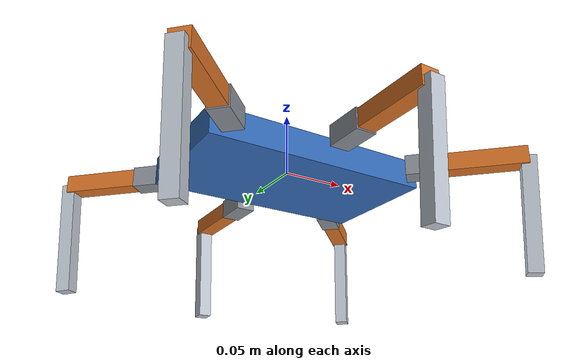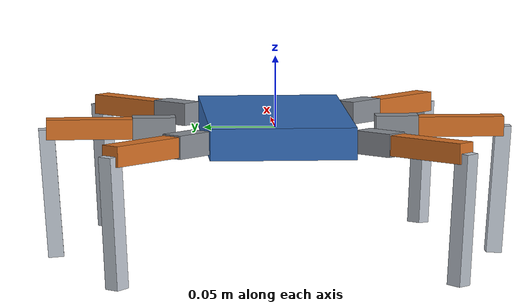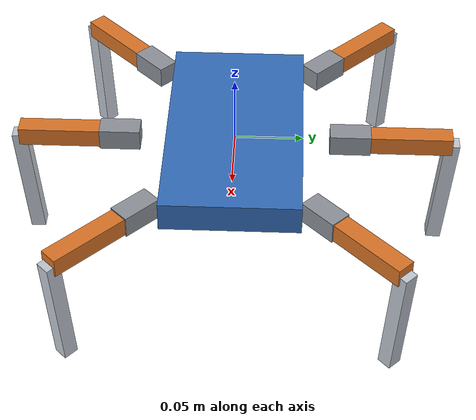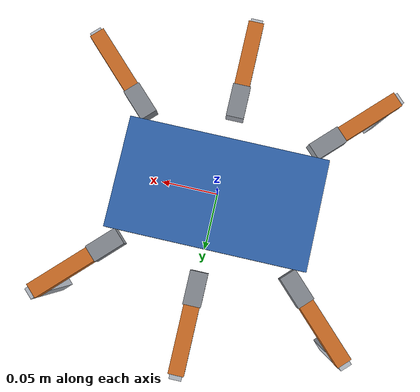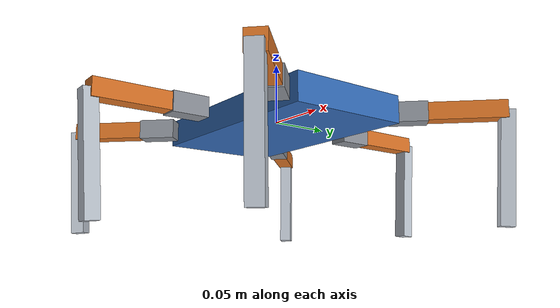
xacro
<?xml version="1.0"?>
<robot xmlns:xacro="http://www.ros.org/wiki/xacro" name="hexapod">
  <xacro:include filename="$(find hexapod_description)/urdf/hexapod_body.urdf.xacro"/>
  <xacro:include filename="$(find hexapod_description)/urdf/hexapod_control.xacro"/>
</robot>

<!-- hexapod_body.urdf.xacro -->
<robot xmlns:xacro="http://www.ros.org/wiki/xacro" name="hexapod_body">
  <material name="body"><color rgba="0.20 0.42 0.72 1"/></material>
  <material name="coxa"><color rgba="0.55 0.57 0.60 1"/></material>
  <material name="femur"><color rgba="0.85 0.45 0.15 1"/></material>
  <material name="tibia"><color rgba="0.75 0.78 0.82 1"/></material>
  <link name="base_link">
    <collision><geometry><box size="0.18000 0.10000 0.02200"/></geometry></collision>
    <visual><geometry><box size="0.18000 0.10000 0.02200"/></geometry><material name="body"/></visual>
    <inertial>
      <origin xyz="0.00000 0.00000 0.00000"/>
      <mass value="0.45"/>
      <inertia ixx="3.932e-04" iyy="1.233e-03" izz="1.590e-03" ixy="0" ixz="0" iyz="0"/>
    </inertial>
  </link>

  <!-- leg FL -->
  <joint name="FL_coxa" type="revolute">
    <parent link="base_link"/>
    <child link="FL_coxa_link"/>
    <origin xyz="0.07500 0.05500 0.00000" rpy="0.00000 0.00000 0.78540"/>
    <axis xyz="0 0 1"/>
    <limit lower="-1.3963" upper="1.3963" effort="0.9" velocity="6.0"/>
    <dynamics damping="0.01"/>
  </joint>
  <link name="FL_coxa_link">
    <collision>
      <origin xyz="0.01500 0.00000 0.00000"/>
      <geometry><box size="0.03000 0.01600 0.01600"/></geometry>
    </collision>
    <visual>
      <origin xyz="0.01500 0.00000 0.00000"/>
      <geometry><box size="0.03000 0.01600 0.01600"/></geometry>
      <material name="coxa"/>
    </visual>
    <inertial>
      <origin xyz="0.01500 0.00000 0.00000"/>
      <mass value="0.06"/>
      <inertia ixx="5.026e-04" iyy="5.058e-04" izz="5.058e-04" ixy="0" ixz="0" iyz="0"/>
    </inertial>
  </link>
  <joint name="FL_femur" type="revolute">
    <parent link="FL_coxa_link"/>
    <child link="FL_femur_link"/>
    <origin xyz="0.03000 0.00000 0.00000" rpy="0.00000 0.00000 0.00000"/>
    <axis xyz="0 -1 0"/>
    <limit lower="-1.0123" upper="1.7802" effort="0.9" velocity="6.0"/>
    <dynamics damping="0.01"/>
  </joint>
  <link name="FL_femur_link">
    <collision>
      <origin xyz="0.03000 0.00000 0.00000"/>
      <geometry><box size="0.06000 0.01400 0.01400"/></geometry>
    </collision>
    <visual>
      <origin xyz="0.03000 0.00000 0.00000"/>
      <geometry><box size="0.06000 0.01400 0.01400"/></geometry>
      <material name="femur"/>
    </visual>
    <inertial>
      <origin xyz="0.03000 0.00000 0.00000"/>
      <mass value="0.065"/>
      <inertia ixx="5.021e-04" iyy="5.206e-04" izz="5.206e-04" ixy="0" ixz="0" iyz="0"/>
    </inertial>
  </link>
  <joint name="FL_tibia" type="revolute">
    <parent link="FL_femur_link"/>
    <child link="FL_tibia_link"/>
    <origin xyz="0.06000 0.00000 0.00000" rpy="0.00000 0.00000 0.00000"/>
    <axis xyz="0 -1 0"/>
    <limit lower="-3.0369" upper="-0.2443" effort="0.9" velocity="6.0"/>
    <dynamics damping="0.01"/>
  </joint>
  <link name="FL_tibia_link">
    <collision>
      <origin xyz="0.09000 0 0"/>
      <geometry><sphere radius="0.008"/></geometry>
    </collision>
    <collision>
      <origin xyz="0.04500 0.00000 0.00000" rpy="0 1.570796 0"/>
      <geometry><cylinder radius="0.0055" length="0.0740"/></geometry>
    </collision>
    <visual>
      <origin xyz="0.04500 0.00000 0.00000"/>
      <geometry><box size="0.09000 0.01100 0.01100"/></geometry>
      <material name="tibia"/>
    </visual>
    <inertial>
      <origin xyz="0.04500 0.00000 0.00000"/>
      <mass value="0.02"/>
      <inertia ixx="5.004e-04" iyy="5.137e-04" izz="5.137e-04" ixy="0" ixz="0" iyz="0"/>
    </inertial>
  </link>

  <!-- leg ML -->
  <joint name="ML_coxa" type="revolute">
    <parent link="base_link"/>
    <child link="ML_coxa_link"/>
    <origin xyz="0.00000 0.07000 0.00000" rpy="0.00000 0.00000 1.57080"/>
    <axis xyz="0 0 1"/>
    <limit lower="-1.3963" upper="1.3963" effort="0.9" velocity="6.0"/>
    <dynamics damping="0.01"/>
  </joint>
  <link name="ML_coxa_link">
    <collision>
      <origin xyz="0.01500 0.00000 0.00000"/>
      <geometry><box size="0.03000 0.01600 0.01600"/></geometry>
    </collision>
    <visual>
      <origin xyz="0.01500 0.00000 0.00000"/>
      <geometry><box size="0.03000 0.01600 0.01600"/></geometry>
      <material name="coxa"/>
    </visual>
    <inertial>
      <origin xyz="0.01500 0.00000 0.00000"/>
      <mass value="0.06"/>
      <inertia ixx="5.026e-04" iyy="5.058e-04" izz="5.058e-04" ixy="0" ixz="0" iyz="0"/>
    </inertial>
  </link>
  <joint name="ML_femur" type="revolute">
    <parent link="ML_coxa_link"/>
    <child link="ML_femur_link"/>
    <origin xyz="0.03000 0.00000 0.00000" rpy="0.00000 0.00000 0.00000"/>
    <axis xyz="0 -1 0"/>
    <limit lower="-1.0123" upper="1.7802" effort="0.9" velocity="6.0"/>
    <dynamics damping="0.01"/>
  </joint>
  <link name="ML_femur_link">
    <collision>
      <origin xyz="0.03000 0.00000 0.00000"/>
      <geometry><box size="0.06000 0.01400 0.01400"/></geometry>
    </collision>
    <visual>
      <origin xyz="0.03000 0.00000 0.00000"/>
      <geometry><box size="0.06000 0.01400 0.01400"/></geometry>
      <material name="femur"/>
    </visual>
    <inertial>
      <origin xyz="0.03000 0.00000 0.00000"/>
      <mass value="0.065"/>
      <inertia ixx="5.021e-04" iyy="5.206e-04" izz="5.206e-04" ixy="0" ixz="0" iyz="0"/>
    </inertial>
  </link>
  <joint name="ML_tibia" type="revolute">
    <parent link="ML_femur_link"/>
    <child link="ML_tibia_link"/>
    <origin xyz="0.06000 0.00000 0.00000" rpy="0.00000 0.00000 0.00000"/>
    <axis xyz="0 -1 0"/>
    <limit lower="-3.0369" upper="-0.2443" effort="0.9" velocity="6.0"/>
    <dynamics damping="0.01"/>
  </joint>
  <link name="ML_tibia_link">
    <collision>
      <origin xyz="0.09000 0 0"/>
      <geometry><sphere radius="0.008"/></geometry>
    </collision>
    <collision>
      <origin xyz="0.04500 0.00000 0.00000" rpy="0 1.570796 0"/>
      <geometry><cylinder radius="0.0055" length="0.0740"/></geometry>
    </collision>
    <visual>
      <origin xyz="0.04500 0.00000 0.00000"/>
      <geometry><box size="0.09000 0.01100 0.01100"/></geometry>
      <material name="tibia"/>
    </visual>
    <inertial>
      <origin xyz="0.04500 0.00000 0.00000"/>
      <mass value="0.02"/>
      <inertia ixx="5.004e-04" iyy="5.137e-04" izz="5.137e-04" ixy="0" ixz="0" iyz="0"/>
    </inertial>
  </link>

  <!-- leg RL -->
  <joint name="RL_coxa" type="revolute">
    <parent link="base_link"/>
    <child link="RL_coxa_link"/>
    <origin xyz="-0.07500 0.05500 0.00000" rpy="0.00000 0.00000 2.35619"/>
    <axis xyz="0 0 1"/>
    <limit lower="-1.3963" upper="1.3963" effort="0.9" velocity="6.0"/>
    <dynamics damping="0.01"/>
  </joint>
  <link name="RL_coxa_link">
    <collision>
      <origin xyz="0.01500 0.00000 0.00000"/>
      <geometry><box size="0.03000 0.01600 0.01600"/></geometry>
    </collision>
    <visual>
      <origin xyz="0.01500 0.00000 0.00000"/>
      <geometry><box size="0.03000 0.01600 0.01600"/></geometry>
      <material name="coxa"/>
    </visual>
    <inertial>
      <origin xyz="0.01500 0.00000 0.00000"/>
      <mass value="0.06"/>
      <inertia ixx="5.026e-04" iyy="5.058e-04" izz="5.058e-04" ixy="0" ixz="0" iyz="0"/>
    </inertial>
  </link>
  <joint name="RL_femur" type="revolute">
    <parent link="RL_coxa_link"/>
    <child link="RL_femur_link"/>
    <origin xyz="0.03000 0.00000 0.00000" rpy="0.00000 0.00000 0.00000"/>
    <axis xyz="0 -1 0"/>
    <limit lower="-1.0123" upper="1.7802" effort="0.9" velocity="6.0"/>
    <dynamics damping="0.01"/>
  </joint>
  <link name="RL_femur_link">
    <collision>
      <origin xyz="0.03000 0.00000 0.00000"/>
      <geometry><box size="0.06000 0.01400 0.01400"/></geometry>
    </collision>
    <visual>
      <origin xyz="0.03000 0.00000 0.00000"/>
      <geometry><box size="0.06000 0.01400 0.01400"/></geometry>
      <material name="femur"/>
    </visual>
    <inertial>
      <origin xyz="0.03000 0.00000 0.00000"/>
      <mass value="0.065"/>
      <inertia ixx="5.021e-04" iyy="5.206e-04" izz="5.206e-04" ixy="0" ixz="0" iyz="0"/>
    </inertial>
  </link>
  <joint name="RL_tibia" type="revolute">
    <parent link="RL_femur_link"/>
    <child link="RL_tibia_link"/>
    <origin xyz="0.06000 0.00000 0.00000" rpy="0.00000 0.00000 0.00000"/>
    <axis xyz="0 -1 0"/>
    <limit lower="-3.0369" upper="-0.2443" effort="0.9" velocity="6.0"/>
    <dynamics damping="0.01"/>
  </joint>
  <link name="RL_tibia_link">
    <collision>
      <origin xyz="0.09000 0 0"/>
      <geometry><sphere radius="0.008"/></geometry>
    </collision>
    <collision>
      <origin xyz="0.04500 0.00000 0.00000" rpy="0 1.570796 0"/>
      <geometry><cylinder radius="0.0055" length="0.0740"/></geometry>
    </collision>
    <visual>
      <origin xyz="0.04500 0.00000 0.00000"/>
      <geometry><box size="0.09000 0.01100 0.01100"/></geometry>
      <material name="tibia"/>
    </visual>
    <inertial>
      <origin xyz="0.04500 0.00000 0.00000"/>
      <mass value="0.02"/>
      <inertia ixx="5.004e-04" iyy="5.137e-04" izz="5.137e-04" ixy="0" ixz="0" iyz="0"/>
    </inertial>
  </link>

  <!-- leg FR -->
  <joint name="FR_coxa" type="revolute">
    <parent link="base_link"/>
    <child link="FR_coxa_link"/>
    <origin xyz="0.07500 -0.05500 0.00000" rpy="0.00000 0.00000 -0.78540"/>
    <axis xyz="0 0 1"/>
    <limit lower="-1.3963" upper="1.3963" effort="0.9" velocity="6.0"/>
    <dynamics damping="0.01"/>
  </joint>
  <link name="FR_coxa_link">
    <collision>
      <origin xyz="0.01500 0.00000 0.00000"/>
      <geometry><box size="0.03000 0.01600 0.01600"/></geometry>
    </collision>
    <visual>
      <origin xyz="0.01500 0.00000 0.00000"/>
      <geometry><box size="0.03000 0.01600 0.01600"/></geometry>
      <material name="coxa"/>
    </visual>
    <inertial>
      <origin xyz="0.01500 0.00000 0.00000"/>
      <mass value="0.06"/>
      <inertia ixx="5.026e-04" iyy="5.058e-04" izz="5.058e-04" ixy="0" ixz="0" iyz="0"/>
    </inertial>
  </link>
  <joint name="FR_femur" type="revolute">
    <parent link="FR_coxa_link"/>
    <child link="FR_femur_link"/>
    <origin xyz="0.03000 0.00000 0.00000" rpy="0.00000 0.00000 0.00000"/>
    <axis xyz="0 -1 0"/>
    <limit lower="-1.0123" upper="1.7802" effort="0.9" velocity="6.0"/>
    <dynamics damping="0.01"/>
  </joint>
  <link name="FR_femur_link">
    <collision>
      <origin xyz="0.03000 0.00000 0.00000"/>
      <geometry><box size="0.06000 0.01400 0.01400"/></geometry>
    </collision>
    <visual>
      <origin xyz="0.03000 0.00000 0.00000"/>
      <geometry><box size="0.06000 0.01400 0.01400"/></geometry>
      <material name="femur"/>
    </visual>
    <inertial>
      <origin xyz="0.03000 0.00000 0.00000"/>
      <mass value="0.065"/>
      <inertia ixx="5.021e-04" iyy="5.206e-04" izz="5.206e-04" ixy="0" ixz="0" iyz="0"/>
    </inertial>
  </link>
  <joint name="FR_tibia" type="revolute">
    <parent link="FR_femur_link"/>
    <child link="FR_tibia_link"/>
    <origin xyz="0.06000 0.00000 0.00000" rpy="0.00000 0.00000 0.00000"/>
    <axis xyz="0 -1 0"/>
    <limit lower="-3.0369" upper="-0.2443" effort="0.9" velocity="6.0"/>
    <dynamics damping="0.01"/>
  </joint>
  <link name="FR_tibia_link">
    <collision>
      <origin xyz="0.09000 0 0"/>
      <geometry><sphere radius="0.008"/></geometry>
    </collision>
    <collision>
      <origin xyz="0.04500 0.00000 0.00000" rpy="0 1.570796 0"/>
      <geometry><cylinder radius="0.0055" length="0.0740"/></geometry>
    </collision>
    <visual>
      <origin xyz="0.04500 0.00000 0.00000"/>
      <geometry><box size="0.09000 0.01100 0.01100"/></geometry>
      <material name="tibia"/>
    </visual>
    <inertial>
      <origin xyz="0.04500 0.00000 0.00000"/>
      <mass value="0.02"/>
      <inertia ixx="5.004e-04" iyy="5.137e-04" izz="5.137e-04" ixy="0" ixz="0" iyz="0"/>
    </inertial>
  </link>

  <!-- leg MR -->
  <joint name="MR_coxa" type="revolute">
    <parent link="base_link"/>
    <child link="MR_coxa_link"/>
    <origin xyz="0.00000 -0.07000 0.00000" rpy="0.00000 0.00000 -1.57080"/>
    <axis xyz="0 0 1"/>
    <limit lower="-1.3963" upper="1.3963" effort="0.9" velocity="6.0"/>
    <dynamics damping="0.01"/>
  </joint>
  <link name="MR_coxa_link">
    <collision>
      <origin xyz="0.01500 0.00000 0.00000"/>
      <geometry><box size="0.03000 0.01600 0.01600"/></geometry>
    </collision>
    <visual>
      <origin xyz="0.01500 0.00000 0.00000"/>
      <geometry><box size="0.03000 0.01600 0.01600"/></geometry>
      <material name="coxa"/>
    </visual>
    <inertial>
      <origin xyz="0.01500 0.00000 0.00000"/>
      <mass value="0.06"/>
      <inertia ixx="5.026e-04" iyy="5.058e-04" izz="5.058e-04" ixy="0" ixz="0" iyz="0"/>
    </inertial>
  </link>
  <joint name="MR_femur" type="revolute">
    <parent link="MR_coxa_link"/>
    <child link="MR_femur_link"/>
    <origin xyz="0.03000 0.00000 0.00000" rpy="0.00000 0.00000 0.00000"/>
    <axis xyz="0 -1 0"/>
    <limit lower="-1.0123" upper="1.7802" effort="0.9" velocity="6.0"/>
    <dynamics damping="0.01"/>
  </joint>
  <link name="MR_femur_link">
    <collision>
      <origin xyz="0.03000 0.00000 0.00000"/>
      <geometry><box size="0.06000 0.01400 0.01400"/></geometry>
    </collision>
    <visual>
      <origin xyz="0.03000 0.00000 0.00000"/>
      <geometry><box size="0.06000 0.01400 0.01400"/></geometry>
      <material name="femur"/>
    </visual>
    <inertial>
      <origin xyz="0.03000 0.00000 0.00000"/>
      <mass value="0.065"/>
      <inertia ixx="5.021e-04" iyy="5.206e-04" izz="5.206e-04" ixy="0" ixz="0" iyz="0"/>
    </inertial>
  </link>
  <joint name="MR_tibia" type="revolute">
    <parent link="MR_femur_link"/>
    <child link="MR_tibia_link"/>
    <origin xyz="0.06000 0.00000 0.00000" rpy="0.00000 0.00000 0.00000"/>
    <axis xyz="0 -1 0"/>
    <limit lower="-3.0369" upper="-0.2443" effort="0.9" velocity="6.0"/>
    <dynamics damping="0.01"/>
  </joint>
  <link name="MR_tibia_link">
    <collision>
      <origin xyz="0.09000 0 0"/>
      <geometry><sphere radius="0.008"/></geometry>
    </collision>
    <collision>
      <origin xyz="0.04500 0.00000 0.00000" rpy="0 1.570796 0"/>
      <geometry><cylinder radius="0.0055" length="0.0740"/></geometry>
    </collision>
    <visual>
      <origin xyz="0.04500 0.00000 0.00000"/>
      <geometry><box size="0.09000 0.01100 0.01100"/></geometry>
      <material name="tibia"/>
    </visual>
    <inertial>
      <origin xyz="0.04500 0.00000 0.00000"/>
      <mass value="0.02"/>
      <inertia ixx="5.004e-04" iyy="5.137e-04" izz="5.137e-04" ixy="0" ixz="0" iyz="0"/>
    </inertial>
  </link>

  <!-- leg RR -->
  <joint name="RR_coxa" type="revolute">
    <parent link="base_link"/>
    <child link="RR_coxa_link"/>
    <origin xyz="-0.07500 -0.05500 0.00000" rpy="0.00000 0.00000 -2.35619"/>
    <axis xyz="0 0 1"/>
    <limit lower="-1.3963" upper="1.3963" effort="0.9" velocity="6.0"/>
    <dynamics damping="0.01"/>
  </joint>
  <link name="RR_coxa_link">
    <collision>
      <origin xyz="0.01500 0.00000 0.00000"/>
      <geometry><box size="0.03000 0.01600 0.01600"/></geometry>
    </collision>
    <visual>
      <origin xyz="0.01500 0.00000 0.00000"/>
      <geometry><box size="0.03000 0.01600 0.01600"/></geometry>
      <material name="coxa"/>
    </visual>
    <inertial>
      <origin xyz="0.01500 0.00000 0.00000"/>
      <mass value="0.06"/>
      <inertia ixx="5.026e-04" iyy="5.058e-04" izz="5.058e-04" ixy="0" ixz="0" iyz="0"/>
    </inertial>
  </link>
  <joint name="RR_femur" type="revolute">
    <parent link="RR_coxa_link"/>
    <child link="RR_femur_link"/>
    <origin xyz="0.03000 0.00000 0.00000" rpy="0.00000 0.00000 0.00000"/>
    <axis xyz="0 -1 0"/>
    <limit lower="-1.0123" upper="1.7802" effort="0.9" velocity="6.0"/>
    <dynamics damping="0.01"/>
  </joint>
  <link name="RR_femur_link">
    <collision>
      <origin xyz="0.03000 0.00000 0.00000"/>
      <geometry><box size="0.06000 0.01400 0.01400"/></geometry>
    </collision>
    <visual>
      <origin xyz="0.03000 0.00000 0.00000"/>
      <geometry><box size="0.06000 0.01400 0.01400"/></geometry>
      <material name="femur"/>
    </visual>
    <inertial>
      <origin xyz="0.03000 0.00000 0.00000"/>
      <mass value="0.065"/>
      <inertia ixx="5.021e-04" iyy="5.206e-04" izz="5.206e-04" ixy="0" ixz="0" iyz="0"/>
    </inertial>
  </link>
  <joint name="RR_tibia" type="revolute">
    <parent link="RR_femur_link"/>
    <child link="RR_tibia_link"/>
    <origin xyz="0.06000 0.00000 0.00000" rpy="0.00000 0.00000 0.00000"/>
    <axis xyz="0 -1 0"/>
    <limit lower="-3.0369" upper="-0.2443" effort="0.9" velocity="6.0"/>
    <dynamics damping="0.01"/>
  </joint>
  <link name="RR_tibia_link">
    <collision>
      <origin xyz="0.09000 0 0"/>
      <geometry><sphere radius="0.008"/></geometry>
    </collision>
    <collision>
      <origin xyz="0.04500 0.00000 0.00000" rpy="0 1.570796 0"/>
      <geometry><cylinder radius="0.0055" length="0.0740"/></geometry>
    </collision>
    <visual>
      <origin xyz="0.04500 0.00000 0.00000"/>
      <geometry><box size="0.09000 0.01100 0.01100"/></geometry>
      <material name="tibia"/>
    </visual>
    <inertial>
      <origin xyz="0.04500 0.00000 0.00000"/>
      <mass value="0.02"/>
      <inertia ixx="5.004e-04" iyy="5.137e-04" izz="5.137e-04" ixy="0" ixz="0" iyz="0"/>
    </inertial>
  </link>
</robot>
